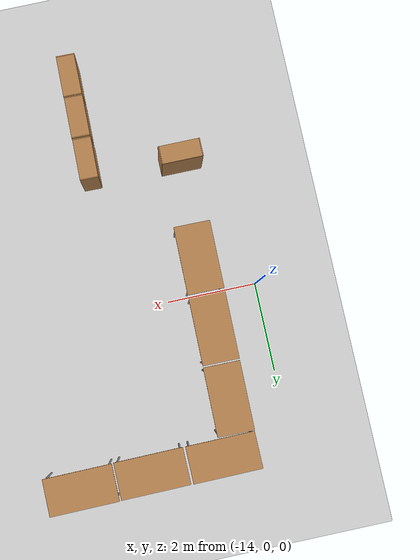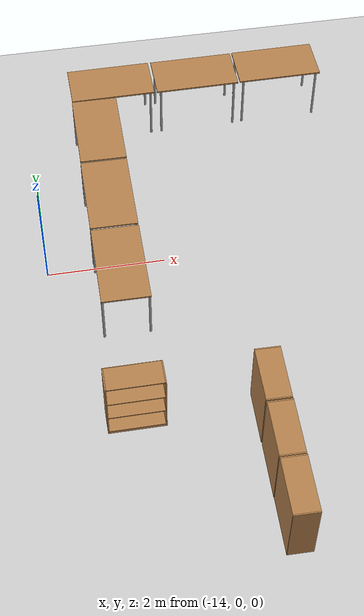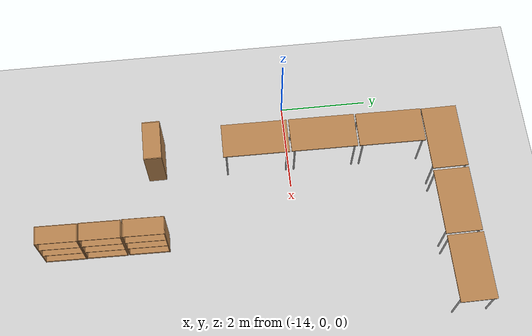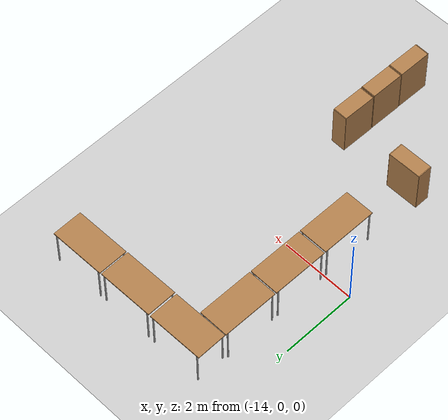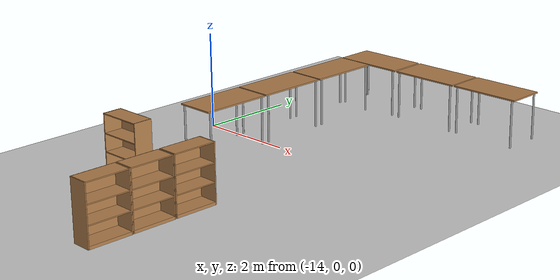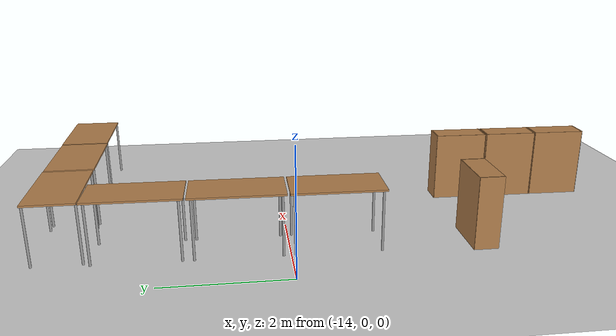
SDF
<sdf version="1.6">
 <world name="default">
  <model name="ground_plane">
   <static>1</static>
   <link name="link">
    <collision name="collision">
     <geometry><plane><normal>0 0 1</normal><size>100 100</size></plane></geometry>
     <surface>
      <contact><collide_bitmask>65535</collide_bitmask></contact>
      <friction><ode><mu>100</mu><mu2>50</mu2></ode></friction>
     </surface>
    </collision>
    <visual name="visual">
     <cast_shadows>0</cast_shadows>
     <geometry><plane><normal>0 0 1</normal><size>100 100</size></plane></geometry>
     <material>
      <script><uri>file://media/materials/scripts/gazebo.material</uri><name>Gazebo/Grey</name></script>
     </material>
    </visual>
   </link>
  </model>
  <model name="table_0">
   <static>1</static>
   <link name="link">
    <collision name="surface">
     <pose>0 0 1 0 -0 0</pose>
     <geometry><box><size>1.5 0.8 0.03</size></box></geometry>
     <surface><friction><ode><mu>0.6</mu><mu2>0.6</mu2></ode></friction></surface>
    </collision>
    <visual name="visual1">
     <pose>0 0 1 0 -0 0</pose>
     <geometry><box><size>1.5 0.8 0.03</size></box></geometry>
     <material>
      <script><uri>file://media/materials/scripts/gazebo.material</uri><name>Gazebo/Wood</name></script>
     </material>
    </visual>
    <collision name="front_left_leg">
     <pose>0.68 0.38 0.5 0 -0 0</pose>
     <geometry><cylinder><radius>0.02</radius><length>1</length></cylinder></geometry>
    </collision>
    <visual name="front_left_leg">
     <pose>0.68 0.38 0.5 0 -0 0</pose>
     <geometry><cylinder><radius>0.02</radius><length>1</length></cylinder></geometry>
     <material>
      <script><uri>file://media/materials/scripts/gazebo.material</uri><name>Gazebo/Grey</name></script>
     </material>
    </visual>
    <collision name="front_right_leg">
     <pose>0.68 -0.38 0.5 0 -0 0</pose>
     <geometry><cylinder><radius>0.02</radius><length>1</length></cylinder></geometry>
    </collision>
    <visual name="front_right_leg">
     <pose>0.68 -0.38 0.5 0 -0 0</pose>
     <geometry><cylinder><radius>0.02</radius><length>1</length></cylinder></geometry>
     <material>
      <script><uri>file://media/materials/scripts/gazebo.material</uri><name>Gazebo/Grey</name></script>
     </material>
    </visual>
    <collision name="back_right_leg">
     <pose>-0.68 -0.38 0.5 0 -0 0</pose>
     <geometry><cylinder><radius>0.02</radius><length>1</length></cylinder></geometry>
    </collision>
    <visual name="back_right_leg">
     <pose>-0.68 -0.38 0.5 0 -0 0</pose>
     <geometry><cylinder><radius>0.02</radius><length>1</length></cylinder></geometry>
     <material>
      <script><uri>file://media/materials/scripts/gazebo.material</uri><name>Gazebo/Grey</name></script>
     </material>
    </visual>
    <collision name="back_left_leg">
     <pose>-0.68 0.38 0.5 0 -0 0</pose>
     <geometry><cylinder><radius>0.02</radius><length>1</length></cylinder></geometry>
    </collision>
    <visual name="back_left_leg">
     <pose>-0.68 0.38 0.5 0 -0 0</pose>
     <geometry><cylinder><radius>0.02</radius><length>1</length></cylinder></geometry>
     <material>
      <script><uri>file://media/materials/scripts/gazebo.material</uri><name>Gazebo/Grey</name></script>
     </material>
    </visual>
   </link>
   <pose>-12.8212 -0.746087 0 0 -0 1.56322</pose>
  </model>
  <model name="bookshelf">
   <static>1</static>
   <link name="link">
    <inertial><mass>1</mass></inertial>
    <collision name="back">
     <pose>0 0.005 0.6 0 -0 0</pose>
     <geometry><box><size>0.9 0.01 1.2</size></box></geometry>
    </collision>
    <visual name="visual1">
     <pose>0 0.005 0.6 0 -0 0</pose>
     <geometry><box><size>0.9 0.01 1.2</size></box></geometry>
     <material>
      <script><uri>file://media/materials/scripts/gazebo.material</uri><name>Gazebo/Wood</name></script>
     </material>
    </visual>
    <collision name="left_side">
     <pose>0.45 -0.195 0.6 0 -0 0</pose>
     <geometry><box><size>0.02 0.4 1.2</size></box></geometry>
    </collision>
    <visual name="visual2">
     <pose>0.45 -0.195 0.6 0 -0 0</pose>
     <geometry><box><size>0.02 0.4 1.2</size></box></geometry>
     <material>
      <script><uri>file://media/materials/scripts/gazebo.material</uri><name>Gazebo/Wood</name></script>
     </material>
    </visual>
    <collision name="right_side">
     <pose>-0.45 -0.195 0.6 0 -0 0</pose>
     <geometry><box><size>0.02 0.4 1.2</size></box></geometry>
    </collision>
    <visual name="visual3">
     <pose>-0.45 -0.195 0.6 0 -0 0</pose>
     <geometry><box><size>0.02 0.4 1.2</size></box></geometry>
     <material>
      <script><uri>file://media/materials/scripts/gazebo.material</uri><name>Gazebo/Wood</name></script>
     </material>
    </visual>
    <collision name="bottom">
     <pose>0 -0.195 0.03 0 -0 0</pose>
     <geometry><box><size>0.88 0.4 0.06</size></box></geometry>
    </collision>
    <visual name="visual4">
     <pose>0 -0.195 0.03 0 -0 0</pose>
     <geometry><box><size>0.88 0.4 0.06</size></box></geometry>
     <material>
      <script><uri>file://media/materials/scripts/gazebo.material</uri><name>Gazebo/Wood</name></script>
     </material>
    </visual>
    <collision name="top">
     <pose>0 -0.195 1.19 0 -0 0</pose>
     <geometry><box><size>0.88 0.4 0.02</size></box></geometry>
    </collision>
    <visual name="visual5">
     <pose>0 -0.195 1.19 0 -0 0</pose>
     <geometry><box><size>0.88 0.4 0.02</size></box></geometry>
     <material>
      <script><uri>file://media/materials/scripts/gazebo.material</uri><name>Gazebo/Wood</name></script>
     </material>
    </visual>
    <collision name="low_shelf">
     <pose>0 -0.195 0.43 0 -0 0</pose>
     <geometry><box><size>0.88 0.4 0.02</size></box></geometry>
    </collision>
    <visual name="visual6">
     <pose>0 -0.195 0.43 0 -0 0</pose>
     <geometry><box><size>0.88 0.4 0.02</size></box></geometry>
     <material>
      <script><uri>file://media/materials/scripts/gazebo.material</uri><name>Gazebo/Wood</name></script>
     </material>
    </visual>
    <collision name="high_shelf">
     <pose>0 -0.195 0.8 0 -0 0</pose>
     <geometry><box><size>0.88 0.4 0.02</size></box></geometry>
    </collision>
    <visual name="visual7">
     <pose>0 -0.195 0.8 0 -0 0</pose>
     <geometry><box><size>0.88 0.4 0.02</size></box></geometry>
     <material>
      <script><uri>file://media/materials/scripts/gazebo.material</uri><name>Gazebo/Wood</name></script>
     </material>
    </visual>
   </link>
   <pose>-11.098 -5.20394 0 0 -0 1.55251</pose>
  </model>
  <model name="bookshelf_clone">
   <static>1</static>
   <link name="link">
    <inertial><mass>1</mass></inertial>
    <collision name="back">
     <pose>0 0.005 0.6 0 -0 0</pose>
     <geometry><box><size>0.9 0.01 1.2</size></box></geometry>
    </collision>
    <visual name="visual1">
     <pose>0 0.005 0.6 0 -0 0</pose>
     <geometry><box><size>0.9 0.01 1.2</size></box></geometry>
     <material>
      <script><uri>file://media/materials/scripts/gazebo.material</uri><name>Gazebo/Wood</name></script>
     </material>
    </visual>
    <collision name="left_side">
     <pose>0.45 -0.195 0.6 0 -0 0</pose>
     <geometry><box><size>0.02 0.4 1.2</size></box></geometry>
    </collision>
    <visual name="visual2">
     <pose>0.45 -0.195 0.6 0 -0 0</pose>
     <geometry><box><size>0.02 0.4 1.2</size></box></geometry>
     <material>
      <script><uri>file://media/materials/scripts/gazebo.material</uri><name>Gazebo/Wood</name></script>
     </material>
    </visual>
    <collision name="right_side">
     <pose>-0.45 -0.195 0.6 0 -0 0</pose>
     <geometry><box><size>0.02 0.4 1.2</size></box></geometry>
    </collision>
    <visual name="visual3">
     <pose>-0.45 -0.195 0.6 0 -0 0</pose>
     <geometry><box><size>0.02 0.4 1.2</size></box></geometry>
     <material>
      <script><uri>file://media/materials/scripts/gazebo.material</uri><name>Gazebo/Wood</name></script>
     </material>
    </visual>
    <collision name="bottom">
     <pose>0 -0.195 0.03 0 -0 0</pose>
     <geometry><box><size>0.88 0.4 0.06</size></box></geometry>
    </collision>
    <visual name="visual4">
     <pose>0 -0.195 0.03 0 -0 0</pose>
     <geometry><box><size>0.88 0.4 0.06</size></box></geometry>
     <material>
      <script><uri>file://media/materials/scripts/gazebo.material</uri><name>Gazebo/Wood</name></script>
     </material>
    </visual>
    <collision name="top">
     <pose>0 -0.195 1.19 0 -0 0</pose>
     <geometry><box><size>0.88 0.4 0.02</size></box></geometry>
    </collision>
    <visual name="visual5">
     <pose>0 -0.195 1.19 0 -0 0</pose>
     <geometry><box><size>0.88 0.4 0.02</size></box></geometry>
     <material>
      <script><uri>file://media/materials/scripts/gazebo.material</uri><name>Gazebo/Wood</name></script>
     </material>
    </visual>
    <collision name="low_shelf">
     <pose>0 -0.195 0.43 0 -0 0</pose>
     <geometry><box><size>0.88 0.4 0.02</size></box></geometry>
    </collision>
    <visual name="visual6">
     <pose>0 -0.195 0.43 0 -0 0</pose>
     <geometry><box><size>0.88 0.4 0.02</size></box></geometry>
     <material>
      <script><uri>file://media/materials/scripts/gazebo.material</uri><name>Gazebo/Wood</name></script>
     </material>
    </visual>
    <collision name="high_shelf">
     <pose>0 -0.195 0.8 0 -0 0</pose>
     <geometry><box><size>0.88 0.4 0.02</size></box></geometry>
    </collision>
    <visual name="visual7">
     <pose>0 -0.195 0.8 0 -0 0</pose>
     <geometry><box><size>0.88 0.4 0.02</size></box></geometry>
     <material>
      <script><uri>file://media/materials/scripts/gazebo.material</uri><name>Gazebo/Wood</name></script>
     </material>
    </visual>
   </link>
   <pose>-11.0868 -4.27589 0 0 -0 1.55251</pose>
  </model>
  <model name="bookshelf_clone_0">
   <static>1</static>
   <link name="link">
    <inertial><mass>1</mass></inertial>
    <collision name="back">
     <pose>0 0.005 0.6 0 -0 0</pose>
     <geometry><box><size>0.9 0.01 1.2</size></box></geometry>
    </collision>
    <visual name="visual1">
     <pose>0 0.005 0.6 0 -0 0</pose>
     <geometry><box><size>0.9 0.01 1.2</size></box></geometry>
     <material>
      <script><uri>file://media/materials/scripts/gazebo.material</uri><name>Gazebo/Wood</name></script>
     </material>
    </visual>
    <collision name="left_side">
     <pose>0.45 -0.195 0.6 0 -0 0</pose>
     <geometry><box><size>0.02 0.4 1.2</size></box></geometry>
    </collision>
    <visual name="visual2">
     <pose>0.45 -0.195 0.6 0 -0 0</pose>
     <geometry><box><size>0.02 0.4 1.2</size></box></geometry>
     <material>
      <script><uri>file://media/materials/scripts/gazebo.material</uri><name>Gazebo/Wood</name></script>
     </material>
    </visual>
    <collision name="right_side">
     <pose>-0.45 -0.195 0.6 0 -0 0</pose>
     <geometry><box><size>0.02 0.4 1.2</size></box></geometry>
    </collision>
    <visual name="visual3">
     <pose>-0.45 -0.195 0.6 0 -0 0</pose>
     <geometry><box><size>0.02 0.4 1.2</size></box></geometry>
     <material>
      <script><uri>file://media/materials/scripts/gazebo.material</uri><name>Gazebo/Wood</name></script>
     </material>
    </visual>
    <collision name="bottom">
     <pose>0 -0.195 0.03 0 -0 0</pose>
     <geometry><box><size>0.88 0.4 0.06</size></box></geometry>
    </collision>
    <visual name="visual4">
     <pose>0 -0.195 0.03 0 -0 0</pose>
     <geometry><box><size>0.88 0.4 0.06</size></box></geometry>
     <material>
      <script><uri>file://media/materials/scripts/gazebo.material</uri><name>Gazebo/Wood</name></script>
     </material>
    </visual>
    <collision name="top">
     <pose>0 -0.195 1.19 0 -0 0</pose>
     <geometry><box><size>0.88 0.4 0.02</size></box></geometry>
    </collision>
    <visual name="visual5">
     <pose>0 -0.195 1.19 0 -0 0</pose>
     <geometry><box><size>0.88 0.4 0.02</size></box></geometry>
     <material>
      <script><uri>file://media/materials/scripts/gazebo.material</uri><name>Gazebo/Wood</name></script>
     </material>
    </visual>
    <collision name="low_shelf">
     <pose>0 -0.195 0.43 0 -0 0</pose>
     <geometry><box><size>0.88 0.4 0.02</size></box></geometry>
    </collision>
    <visual name="visual6">
     <pose>0 -0.195 0.43 0 -0 0</pose>
     <geometry><box><size>0.88 0.4 0.02</size></box></geometry>
     <material>
      <script><uri>file://media/materials/scripts/gazebo.material</uri><name>Gazebo/Wood</name></script>
     </material>
    </visual>
    <collision name="high_shelf">
     <pose>0 -0.195 0.8 0 -0 0</pose>
     <geometry><box><size>0.88 0.4 0.02</size></box></geometry>
    </collision>
    <visual name="visual7">
     <pose>0 -0.195 0.8 0 -0 0</pose>
     <geometry><box><size>0.88 0.4 0.02</size></box></geometry>
     <material>
      <script><uri>file://media/materials/scripts/gazebo.material</uri><name>Gazebo/Wood</name></script>
     </material>
    </visual>
   </link>
   <pose>-11.0769 -3.33696 0 0 -0 1.55251</pose>
  </model>
  <model name="table_0_clone">
   <static>1</static>
   <link name="link">
    <collision name="surface">
     <pose>0 0 1 0 -0 0</pose>
     <geometry><box><size>1.5 0.8 0.03</size></box></geometry>
     <surface><friction><ode><mu>0.6</mu><mu2>0.6</mu2></ode></friction></surface>
    </collision>
    <visual name="visual1">
     <pose>0 0 1 0 -0 0</pose>
     <geometry><box><size>1.5 0.8 0.03</size></box></geometry>
     <material>
      <script><uri>file://media/materials/scripts/gazebo.material</uri><name>Gazebo/Wood</name></script>
     </material>
    </visual>
    <collision name="front_left_leg">
     <pose>0.68 0.38 0.5 0 -0 0</pose>
     <geometry><cylinder><radius>0.02</radius><length>1</length></cylinder></geometry>
    </collision>
    <visual name="front_left_leg">
     <pose>0.68 0.38 0.5 0 -0 0</pose>
     <geometry><cylinder><radius>0.02</radius><length>1</length></cylinder></geometry>
     <material>
      <script><uri>file://media/materials/scripts/gazebo.material</uri><name>Gazebo/Grey</name></script>
     </material>
    </visual>
    <collision name="front_right_leg">
     <pose>0.68 -0.38 0.5 0 -0 0</pose>
     <geometry><cylinder><radius>0.02</radius><length>1</length></cylinder></geometry>
    </collision>
    <visual name="front_right_leg">
     <pose>0.68 -0.38 0.5 0 -0 0</pose>
     <geometry><cylinder><radius>0.02</radius><length>1</length></cylinder></geometry>
     <material>
      <script><uri>file://media/materials/scripts/gazebo.material</uri><name>Gazebo/Grey</name></script>
     </material>
    </visual>
    <collision name="back_right_leg">
     <pose>-0.68 -0.38 0.5 0 -0 0</pose>
     <geometry><cylinder><radius>0.02</radius><length>1</length></cylinder></geometry>
    </collision>
    <visual name="back_right_leg">
     <pose>-0.68 -0.38 0.5 0 -0 0</pose>
     <geometry><cylinder><radius>0.02</radius><length>1</length></cylinder></geometry>
     <material>
      <script><uri>file://media/materials/scripts/gazebo.material</uri><name>Gazebo/Grey</name></script>
     </material>
    </visual>
    <collision name="back_left_leg">
     <pose>-0.68 0.38 0.5 0 -0 0</pose>
     <geometry><cylinder><radius>0.02</radius><length>1</length></cylinder></geometry>
    </collision>
    <visual name="back_left_leg">
     <pose>-0.68 0.38 0.5 0 -0 0</pose>
     <geometry><cylinder><radius>0.02</radius><length>1</length></cylinder></geometry>
     <material>
      <script><uri>file://media/materials/scripts/gazebo.material</uri><name>Gazebo/Grey</name></script>
     </material>
    </visual>
   </link>
   <pose>-12.8125 0.79561 0 0 -0 1.56322</pose>
  </model>
  <model name="table_0_clone_0">
   <static>1</static>
   <link name="link">
    <collision name="surface">
     <pose>0 0 1 0 -0 0</pose>
     <geometry><box><size>1.5 0.8 0.03</size></box></geometry>
     <surface><friction><ode><mu>0.6</mu><mu2>0.6</mu2></ode></friction></surface>
    </collision>
    <visual name="visual1">
     <pose>0 0 1 0 -0 0</pose>
     <geometry><box><size>1.5 0.8 0.03</size></box></geometry>
     <material>
      <script><uri>file://media/materials/scripts/gazebo.material</uri><name>Gazebo/Wood</name></script>
     </material>
    </visual>
    <collision name="front_left_leg">
     <pose>0.68 0.38 0.5 0 -0 0</pose>
     <geometry><cylinder><radius>0.02</radius><length>1</length></cylinder></geometry>
    </collision>
    <visual name="front_left_leg">
     <pose>0.68 0.38 0.5 0 -0 0</pose>
     <geometry><cylinder><radius>0.02</radius><length>1</length></cylinder></geometry>
     <material>
      <script><uri>file://media/materials/scripts/gazebo.material</uri><name>Gazebo/Grey</name></script>
     </material>
    </visual>
    <collision name="front_right_leg">
     <pose>0.68 -0.38 0.5 0 -0 0</pose>
     <geometry><cylinder><radius>0.02</radius><length>1</length></cylinder></geometry>
    </collision>
    <visual name="front_right_leg">
     <pose>0.68 -0.38 0.5 0 -0 0</pose>
     <geometry><cylinder><radius>0.02</radius><length>1</length></cylinder></geometry>
     <material>
      <script><uri>file://media/materials/scripts/gazebo.material</uri><name>Gazebo/Grey</name></script>
     </material>
    </visual>
    <collision name="back_right_leg">
     <pose>-0.68 -0.38 0.5 0 -0 0</pose>
     <geometry><cylinder><radius>0.02</radius><length>1</length></cylinder></geometry>
    </collision>
    <visual name="back_right_leg">
     <pose>-0.68 -0.38 0.5 0 -0 0</pose>
     <geometry><cylinder><radius>0.02</radius><length>1</length></cylinder></geometry>
     <material>
      <script><uri>file://media/materials/scripts/gazebo.material</uri><name>Gazebo/Grey</name></script>
     </material>
    </visual>
    <collision name="back_left_leg">
     <pose>-0.68 0.38 0.5 0 -0 0</pose>
     <geometry><cylinder><radius>0.02</radius><length>1</length></cylinder></geometry>
    </collision>
    <visual name="back_left_leg">
     <pose>-0.68 0.38 0.5 0 -0 0</pose>
     <geometry><cylinder><radius>0.02</radius><length>1</length></cylinder></geometry>
     <material>
      <script><uri>file://media/materials/scripts/gazebo.material</uri><name>Gazebo/Grey</name></script>
     </material>
    </visual>
   </link>
   <pose>-12.7975 2.33245 0 0 -0 1.56322</pose>
  </model>
  <model name="table_0_clone_1">
   <static>1</static>
   <link name="link">
    <collision name="surface">
     <pose>0 0 1 0 -0 0</pose>
     <geometry><box><size>1.5 0.8 0.03</size></box></geometry>
     <surface><friction><ode><mu>0.6</mu><mu2>0.6</mu2></ode></friction></surface>
    </collision>
    <visual name="visual1">
     <pose>0 0 1 0 -0 0</pose>
     <geometry><box><size>1.5 0.8 0.03</size></box></geometry>
     <material>
      <script><uri>file://media/materials/scripts/gazebo.material</uri><name>Gazebo/Wood</name></script>
     </material>
    </visual>
    <collision name="front_left_leg">
     <pose>0.68 0.38 0.5 0 -0 0</pose>
     <geometry><cylinder><radius>0.02</radius><length>1</length></cylinder></geometry>
    </collision>
    <visual name="front_left_leg">
     <pose>0.68 0.38 0.5 0 -0 0</pose>
     <geometry><cylinder><radius>0.02</radius><length>1</length></cylinder></geometry>
     <material>
      <script><uri>file://media/materials/scripts/gazebo.material</uri><name>Gazebo/Grey</name></script>
     </material>
    </visual>
    <collision name="front_right_leg">
     <pose>0.68 -0.38 0.5 0 -0 0</pose>
     <geometry><cylinder><radius>0.02</radius><length>1</length></cylinder></geometry>
    </collision>
    <visual name="front_right_leg">
     <pose>0.68 -0.38 0.5 0 -0 0</pose>
     <geometry><cylinder><radius>0.02</radius><length>1</length></cylinder></geometry>
     <material>
      <script><uri>file://media/materials/scripts/gazebo.material</uri><name>Gazebo/Grey</name></script>
     </material>
    </visual>
    <collision name="back_right_leg">
     <pose>-0.68 -0.38 0.5 0 -0 0</pose>
     <geometry><cylinder><radius>0.02</radius><length>1</length></cylinder></geometry>
    </collision>
    <visual name="back_right_leg">
     <pose>-0.68 -0.38 0.5 0 -0 0</pose>
     <geometry><cylinder><radius>0.02</radius><length>1</length></cylinder></geometry>
     <material>
      <script><uri>file://media/materials/scripts/gazebo.material</uri><name>Gazebo/Grey</name></script>
     </material>
    </visual>
    <collision name="back_left_leg">
     <pose>-0.68 0.38 0.5 0 -0 0</pose>
     <geometry><cylinder><radius>0.02</radius><length>1</length></cylinder></geometry>
    </collision>
    <visual name="back_left_leg">
     <pose>-0.68 0.38 0.5 0 -0 0</pose>
     <geometry><cylinder><radius>0.02</radius><length>1</length></cylinder></geometry>
     <material>
      <script><uri>file://media/materials/scripts/gazebo.material</uri><name>Gazebo/Grey</name></script>
     </material>
    </visual>
   </link>
   <pose>-12.4364 3.51002 0 0 -0 0.009511</pose>
  </model>
  <model name="table_0_clone_1_clone">
   <static>1</static>
   <link name="link">
    <collision name="surface">
     <pose>0 0 1 0 -0 0</pose>
     <geometry><box><size>1.5 0.8 0.03</size></box></geometry>
     <surface><friction><ode><mu>0.6</mu><mu2>0.6</mu2></ode></friction></surface>
    </collision>
    <visual name="visual1">
     <pose>0 0 1 0 -0 0</pose>
     <geometry><box><size>1.5 0.8 0.03</size></box></geometry>
     <material>
      <script><uri>file://media/materials/scripts/gazebo.material</uri><name>Gazebo/Wood</name></script>
     </material>
    </visual>
    <collision name="front_left_leg">
     <pose>0.68 0.38 0.5 0 -0 0</pose>
     <geometry><cylinder><radius>0.02</radius><length>1</length></cylinder></geometry>
    </collision>
    <visual name="front_left_leg">
     <pose>0.68 0.38 0.5 0 -0 0</pose>
     <geometry><cylinder><radius>0.02</radius><length>1</length></cylinder></geometry>
     <material>
      <script><uri>file://media/materials/scripts/gazebo.material</uri><name>Gazebo/Grey</name></script>
     </material>
    </visual>
    <collision name="front_right_leg">
     <pose>0.68 -0.38 0.5 0 -0 0</pose>
     <geometry><cylinder><radius>0.02</radius><length>1</length></cylinder></geometry>
    </collision>
    <visual name="front_right_leg">
     <pose>0.68 -0.38 0.5 0 -0 0</pose>
     <geometry><cylinder><radius>0.02</radius><length>1</length></cylinder></geometry>
     <material>
      <script><uri>file://media/materials/scripts/gazebo.material</uri><name>Gazebo/Grey</name></script>
     </material>
    </visual>
    <collision name="back_right_leg">
     <pose>-0.68 -0.38 0.5 0 -0 0</pose>
     <geometry><cylinder><radius>0.02</radius><length>1</length></cylinder></geometry>
    </collision>
    <visual name="back_right_leg">
     <pose>-0.68 -0.38 0.5 0 -0 0</pose>
     <geometry><cylinder><radius>0.02</radius><length>1</length></cylinder></geometry>
     <material>
      <script><uri>file://media/materials/scripts/gazebo.material</uri><name>Gazebo/Grey</name></script>
     </material>
    </visual>
    <collision name="back_left_leg">
     <pose>-0.68 0.38 0.5 0 -0 0</pose>
     <geometry><cylinder><radius>0.02</radius><length>1</length></cylinder></geometry>
    </collision>
    <visual name="back_left_leg">
     <pose>-0.68 0.38 0.5 0 -0 0</pose>
     <geometry><cylinder><radius>0.02</radius><length>1</length></cylinder></geometry>
     <material>
      <script><uri>file://media/materials/scripts/gazebo.material</uri><name>Gazebo/Grey</name></script>
     </material>
    </visual>
   </link>
   <pose>-10.8838 3.51985 0 0 -0 0.009511</pose>
  </model>
  <model name="table_0_clone_1_clone_0">
   <static>1</static>
   <link name="link">
    <collision name="surface">
     <pose>0 0 1 0 -0 0</pose>
     <geometry><box><size>1.5 0.8 0.03</size></box></geometry>
     <surface><friction><ode><mu>0.6</mu><mu2>0.6</mu2></ode></friction></surface>
    </collision>
    <visual name="visual1">
     <pose>0 0 1 0 -0 0</pose>
     <geometry><box><size>1.5 0.8 0.03</size></box></geometry>
     <material>
      <script><uri>file://media/materials/scripts/gazebo.material</uri><name>Gazebo/Wood</name></script>
     </material>
    </visual>
    <collision name="front_left_leg">
     <pose>0.68 0.38 0.5 0 -0 0</pose>
     <geometry><cylinder><radius>0.02</radius><length>1</length></cylinder></geometry>
    </collision>
    <visual name="front_left_leg">
     <pose>0.68 0.38 0.5 0 -0 0</pose>
     <geometry><cylinder><radius>0.02</radius><length>1</length></cylinder></geometry>
     <material>
      <script><uri>file://media/materials/scripts/gazebo.material</uri><name>Gazebo/Grey</name></script>
     </material>
    </visual>
    <collision name="front_right_leg">
     <pose>0.68 -0.38 0.5 0 -0 0</pose>
     <geometry><cylinder><radius>0.02</radius><length>1</length></cylinder></geometry>
    </collision>
    <visual name="front_right_leg">
     <pose>0.68 -0.38 0.5 0 -0 0</pose>
     <geometry><cylinder><radius>0.02</radius><length>1</length></cylinder></geometry>
     <material>
      <script><uri>file://media/materials/scripts/gazebo.material</uri><name>Gazebo/Grey</name></script>
     </material>
    </visual>
    <collision name="back_right_leg">
     <pose>-0.68 -0.38 0.5 0 -0 0</pose>
     <geometry><cylinder><radius>0.02</radius><length>1</length></cylinder></geometry>
    </collision>
    <visual name="back_right_leg">
     <pose>-0.68 -0.38 0.5 0 -0 0</pose>
     <geometry><cylinder><radius>0.02</radius><length>1</length></cylinder></geometry>
     <material>
      <script><uri>file://media/materials/scripts/gazebo.material</uri><name>Gazebo/Grey</name></script>
     </material>
    </visual>
    <collision name="back_left_leg">
     <pose>-0.68 0.38 0.5 0 -0 0</pose>
     <geometry><cylinder><radius>0.02</radius><length>1</length></cylinder></geometry>
    </collision>
    <visual name="back_left_leg">
     <pose>-0.68 0.38 0.5 0 -0 0</pose>
     <geometry><cylinder><radius>0.02</radius><length>1</length></cylinder></geometry>
     <material>
      <script><uri>file://media/materials/scripts/gazebo.material</uri><name>Gazebo/Grey</name></script>
     </material>
    </visual>
   </link>
   <pose>-9.34494 3.54248 0 0 -0 0.009511</pose>
  </model>
  <model name="Bookshelf">
   <model name="bookshelf">
    <static>1</static>
    <link name="link">
     <inertial><mass>1</mass></inertial>
     <collision name="back">
      <pose>0 0.005 0.6 0 -0 0</pose>
      <geometry><box><size>0.9 0.01 1.2</size></box></geometry>
     </collision>
     <visual name="visual1">
      <pose>0 0.005 0.6 0 -0 0</pose>
      <geometry><box><size>0.9 0.01 1.2</size></box></geometry>
      <material>
       <script><uri>file://media/materials/scripts/gazebo.material</uri><name>Gazebo/Wood</name></script>
      </material>
     </visual>
     <collision name="left_side">
      <pose>0.45 -0.195 0.6 0 -0 0</pose>
      <geometry><box><size>0.02 0.4 1.2</size></box></geometry>
     </collision>
     <visual name="visual2">
      <pose>0.45 -0.195 0.6 0 -0 0</pose>
      <geometry><box><size>0.02 0.4 1.2</size></box></geometry>
      <material>
       <script><uri>file://media/materials/scripts/gazebo.material</uri><name>Gazebo/Wood</name></script>
      </material>
     </visual>
     <collision name="right_side">
      <pose>-0.45 -0.195 0.6 0 -0 0</pose>
      <geometry><box><size>0.02 0.4 1.2</size></box></geometry>
     </collision>
     <visual name="visual3">
      <pose>-0.45 -0.195 0.6 0 -0 0</pose>
      <geometry><box><size>0.02 0.4 1.2</size></box></geometry>
      <material>
       <script><uri>file://media/materials/scripts/gazebo.material</uri><name>Gazebo/Wood</name></script>
      </material>
     </visual>
     <collision name="bottom">
      <pose>0 -0.195 0.03 0 -0 0</pose>
      <geometry><box><size>0.88 0.4 0.06</size></box></geometry>
     </collision>
     <visual name="visual4">
      <pose>0 -0.195 0.03 0 -0 0</pose>
      <geometry><box><size>0.88 0.4 0.06</size></box></geometry>
      <material>
       <script><uri>file://media/materials/scripts/gazebo.material</uri><name>Gazebo/Wood</name></script>
      </material>
     </visual>
     <collision name="top">
      <pose>0 -0.195 1.19 0 -0 0</pose>
      <geometry><box><size>0.88 0.4 0.02</size></box></geometry>
     </collision>
     <visual name="visual5">
      <pose>0 -0.195 1.19 0 -0 0</pose>
      <geometry><box><size>0.88 0.4 0.02</size></box></geometry>
      <material>
       <script><uri>file://media/materials/scripts/gazebo.material</uri><name>Gazebo/Wood</name></script>
      </material>
     </visual>
     <collision name="low_shelf">
      <pose>0 -0.195 0.43 0 -0 0</pose>
      <geometry><box><size>0.88 0.4 0.02</size></box></geometry>
     </collision>
     <visual name="visual6">
      <pose>0 -0.195 0.43 0 -0 0</pose>
      <geometry><box><size>0.88 0.4 0.02</size></box></geometry>
      <material>
       <script><uri>file://media/materials/scripts/gazebo.material</uri><name>Gazebo/Wood</name></script>
      </material>
     </visual>
     <collision name="high_shelf">
      <pose>0 -0.195 0.8 0 -0 0</pose>
      <geometry><box><size>0.88 0.4 0.02</size></box></geometry>
     </collision>
     <visual name="visual7">
      <pose>0 -0.195 0.8 0 -0 0</pose>
      <geometry><box><size>0.88 0.4 0.02</size></box></geometry>
      <material>
       <script><uri>file://media/materials/scripts/gazebo.material</uri><name>Gazebo/Wood</name></script>
      </material>
     </visual>
    </link>
    <pose>-0 -4e-06 0 0 -0 0</pose>
   </model>
   <static>0</static>
   <pose>-12.9206 -2.86336 0 0 -0 0</pose>
  </model>
 </world>
</sdf>
